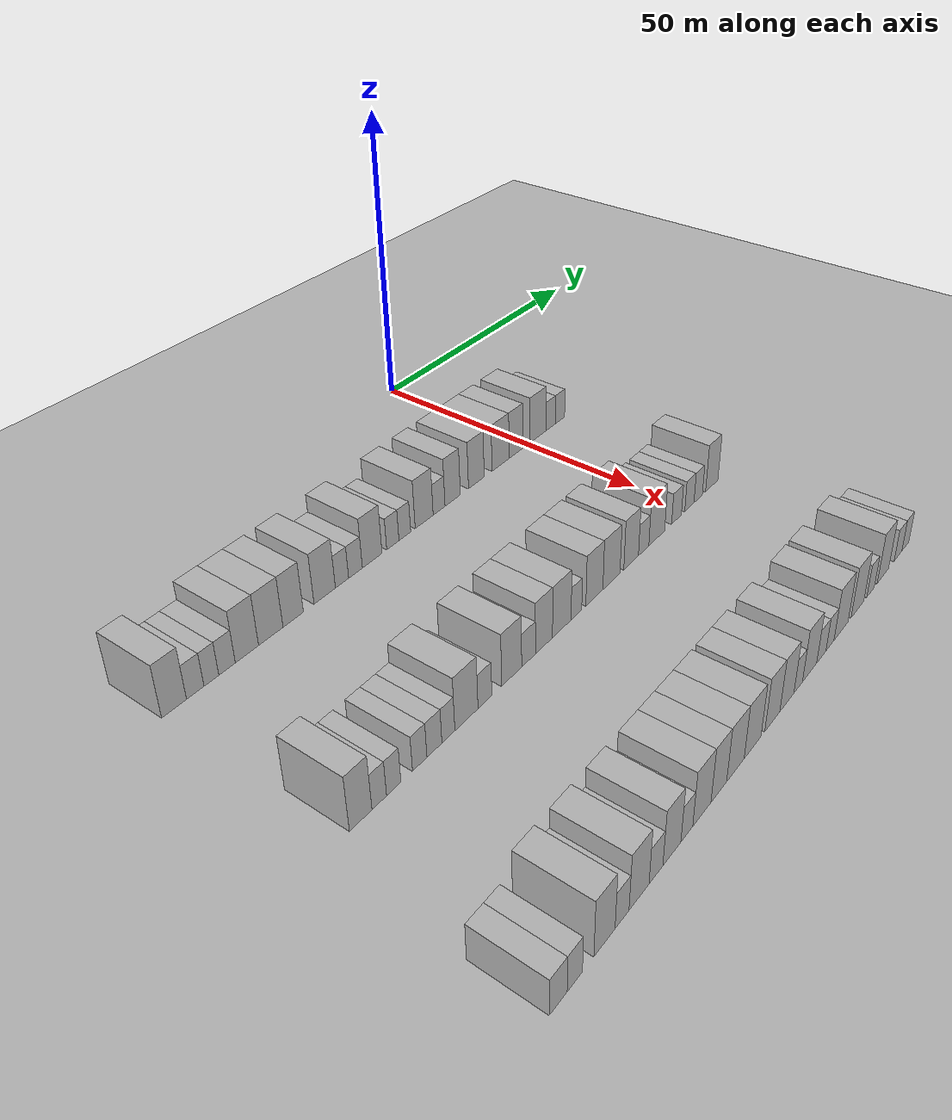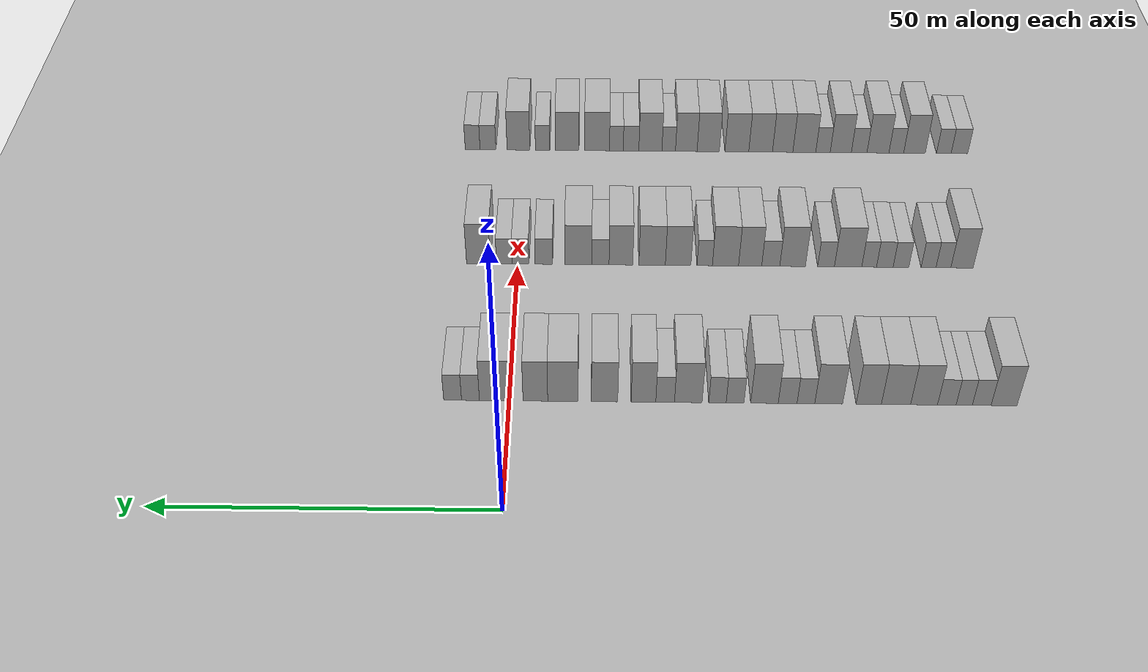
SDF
<sdf version="1.6">
 <world name="default">
  <include><name>ground_plane_1</name><uri>model://HANNAS_ground_plane</uri></include>
  <include>
   <name>ground_plane_2</name>
   <uri>model://HANNAS_ground_plane</uri>
   <pose>100 0 0  0 0 0</pose>
  </include>
  <model name="building_47">
   <static>1</static>
   <pose>25.0000 -73.4508 0 0.000000 0.000000 0.000000</pose>
   <link name="link">
    <pose>0 0 4.50 0 0 0</pose>
    <collision name="collision"><geometry><box><size>10.0000 3.8381 9.0000</size></box></geometry></collision>
    <visual name="visual">
     <cast_shadows>0</cast_shadows>
     <geometry><box><size>10.0000 3.8381 9.0000</size></box></geometry>
     <material>
      <script>
       <uri>model://HANNAS_wall/materials/scripts</uri>
       <uri>model://HANNAS_wall/materials/textures</uri>
       <name>vrc/HANNAS_wall</name>
      </script>
     </material>
    </visual>
   </link>
  </model>
  <model name="building_48">
   <static>1</static>
   <pose>25.0000 -70.1447 0 0.000000 0.000000 0.000000</pose>
   <link name="link">
    <pose>0 0 3.00 0 0 0</pose>
    <collision name="collision"><geometry><box><size>10.0000 2.7741 6.0000</size></box></geometry></collision>
    <visual name="visual">
     <cast_shadows>0</cast_shadows>
     <geometry><box><size>10.0000 2.7741 6.0000</size></box></geometry>
     <material>
      <script>
       <uri>model://HANNAS_wall/materials/scripts</uri>
       <uri>model://HANNAS_wall/materials/textures</uri>
       <name>vrc/HANNAS_wall</name>
      </script>
     </material>
    </visual>
   </link>
  </model>
  <model name="building_49">
   <static>1</static>
   <pose>25.0000 -67.5564 0 0.000000 0.000000 0.000000</pose>
   <link name="link">
    <pose>0 0 3.00 0 0 0</pose>
    <collision name="collision"><geometry><box><size>10.0000 2.4025 6.0000</size></box></geometry></collision>
    <visual name="visual">
     <cast_shadows>0</cast_shadows>
     <geometry><box><size>10.0000 2.4025 6.0000</size></box></geometry>
     <material>
      <script>
       <uri>model://HANNAS_wall/materials/scripts</uri>
       <uri>model://HANNAS_wall/materials/textures</uri>
       <name>vrc/HANNAS_wall</name>
      </script>
     </material>
    </visual>
   </link>
  </model>
  <model name="building_50">
   <static>1</static>
   <pose>25.0000 -64.9782 0 0.000000 0.000000 0.000000</pose>
   <link name="link">
    <pose>0 0 3.00 0 0 0</pose>
    <collision name="collision"><geometry><box><size>10.0000 2.7538 6.0000</size></box></geometry></collision>
    <visual name="visual">
     <cast_shadows>0</cast_shadows>
     <geometry><box><size>10.0000 2.7538 6.0000</size></box></geometry>
     <material>
      <script>
       <uri>model://HANNAS_wall/materials/scripts</uri>
       <uri>model://HANNAS_wall/materials/textures</uri>
       <name>vrc/HANNAS_wall</name>
      </script>
     </material>
    </visual>
   </link>
  </model>
  <model name="building_51">
   <static>1</static>
   <pose>25.0000 -61.6114 0 0.000000 0.000000 0.000000</pose>
   <link name="link">
    <pose>0 0 4.50 0 0 0</pose>
    <collision name="collision"><geometry><box><size>10.0000 3.9800 9.0000</size></box></geometry></collision>
    <visual name="visual">
     <cast_shadows>0</cast_shadows>
     <geometry><box><size>10.0000 3.9800 9.0000</size></box></geometry>
     <material>
      <script>
       <uri>model://HANNAS_wall/materials/scripts</uri>
       <uri>model://HANNAS_wall/materials/textures</uri>
       <name>vrc/HANNAS_wall</name>
      </script>
     </material>
    </visual>
   </link>
  </model>
  <model name="building_52">
   <static>1</static>
   <pose>25.0000 -57.4551 0 0.000000 0.000000 0.000000</pose>
   <link name="link">
    <pose>0 0 4.50 0 0 0</pose>
    <collision name="collision"><geometry><box><size>10.0000 4.3326 9.0000</size></box></geometry></collision>
    <visual name="visual">
     <cast_shadows>0</cast_shadows>
     <geometry><box><size>10.0000 4.3326 9.0000</size></box></geometry>
     <material>
      <script>
       <uri>model://HANNAS_wall/materials/scripts</uri>
       <uri>model://HANNAS_wall/materials/textures</uri>
       <name>vrc/HANNAS_wall</name>
      </script>
     </material>
    </visual>
   </link>
  </model>
  <model name="building_53">
   <static>1</static>
   <pose>25.0000 -53.4151 0 0.000000 0.000000 0.000000</pose>
   <link name="link">
    <pose>0 0 4.50 0 0 0</pose>
    <collision name="collision"><geometry><box><size>10.0000 3.7473 9.0000</size></box></geometry></collision>
    <visual name="visual">
     <cast_shadows>0</cast_shadows>
     <geometry><box><size>10.0000 3.7473 9.0000</size></box></geometry>
     <material>
      <script>
       <uri>model://HANNAS_wall/materials/scripts</uri>
       <uri>model://HANNAS_wall/materials/textures</uri>
       <name>vrc/HANNAS_wall</name>
      </script>
     </material>
    </visual>
   </link>
  </model>
  <model name="building_54">
   <static>1</static>
   <pose>25.0000 -47.4764 0 0.000000 0.000000 0.000000</pose>
   <link name="link">
    <pose>0 0 4.50 0 0 0</pose>
    <collision name="collision"><geometry><box><size>10.0000 4.1301 9.0000</size></box></geometry></collision>
    <visual name="visual">
     <cast_shadows>0</cast_shadows>
     <geometry><box><size>10.0000 4.1301 9.0000</size></box></geometry>
     <material>
      <script>
       <uri>model://HANNAS_wall/materials/scripts</uri>
       <uri>model://HANNAS_wall/materials/textures</uri>
       <name>vrc/HANNAS_wall</name>
      </script>
     </material>
    </visual>
   </link>
  </model>
  <model name="building_55">
   <static>1</static>
   <pose>25.0000 -44.0938 0 0.000000 0.000000 0.000000</pose>
   <link name="link">
    <pose>0 0 3.00 0 0 0</pose>
    <collision name="collision"><geometry><box><size>10.0000 2.6352 6.0000</size></box></geometry></collision>
    <visual name="visual">
     <cast_shadows>0</cast_shadows>
     <geometry><box><size>10.0000 2.6352 6.0000</size></box></geometry>
     <material>
      <script>
       <uri>model://HANNAS_wall/materials/scripts</uri>
       <uri>model://HANNAS_wall/materials/textures</uri>
       <name>vrc/HANNAS_wall</name>
      </script>
     </material>
    </visual>
   </link>
  </model>
  <model name="building_56">
   <static>1</static>
   <pose>25.0000 -41.3825 0 0.000000 0.000000 0.000000</pose>
   <link name="link">
    <pose>0 0 3.00 0 0 0</pose>
    <collision name="collision"><geometry><box><size>10.0000 2.7872 6.0000</size></box></geometry></collision>
    <visual name="visual">
     <cast_shadows>0</cast_shadows>
     <geometry><box><size>10.0000 2.7872 6.0000</size></box></geometry>
     <material>
      <script>
       <uri>model://HANNAS_wall/materials/scripts</uri>
       <uri>model://HANNAS_wall/materials/textures</uri>
       <name>vrc/HANNAS_wall</name>
      </script>
     </material>
    </visual>
   </link>
  </model>
  <model name="building_57">
   <static>1</static>
   <pose>25.0000 -37.9443 0 0.000000 0.000000 0.000000</pose>
   <link name="link">
    <pose>0 0 4.50 0 0 0</pose>
    <collision name="collision"><geometry><box><size>10.0000 4.0893 9.0000</size></box></geometry></collision>
    <visual name="visual">
     <cast_shadows>0</cast_shadows>
     <geometry><box><size>10.0000 4.0893 9.0000</size></box></geometry>
     <material>
      <script>
       <uri>model://HANNAS_wall/materials/scripts</uri>
       <uri>model://HANNAS_wall/materials/textures</uri>
       <name>vrc/HANNAS_wall</name>
      </script>
     </material>
    </visual>
   </link>
  </model>
  <model name="building_58">
   <static>1</static>
   <pose>25.0000 -33.5783 0 0.000000 0.000000 0.000000</pose>
   <link name="link">
    <pose>0 0 3.00 0 0 0</pose>
    <collision name="collision"><geometry><box><size>10.0000 2.6426 6.0000</size></box></geometry></collision>
    <visual name="visual">
     <cast_shadows>0</cast_shadows>
     <geometry><box><size>10.0000 2.6426 6.0000</size></box></geometry>
     <material>
      <script>
       <uri>model://HANNAS_wall/materials/scripts</uri>
       <uri>model://HANNAS_wall/materials/textures</uri>
       <name>vrc/HANNAS_wall</name>
      </script>
     </material>
    </visual>
   </link>
  </model>
  <model name="building_59">
   <static>1</static>
   <pose>25.0000 -30.9635 0 0.000000 0.000000 0.000000</pose>
   <link name="link">
    <pose>0 0 3.00 0 0 0</pose>
    <collision name="collision"><geometry><box><size>10.0000 2.5870 6.0000</size></box></geometry></collision>
    <visual name="visual">
     <cast_shadows>0</cast_shadows>
     <geometry><box><size>10.0000 2.5870 6.0000</size></box></geometry>
     <material>
      <script>
       <uri>model://HANNAS_wall/materials/scripts</uri>
       <uri>model://HANNAS_wall/materials/textures</uri>
       <name>vrc/HANNAS_wall</name>
      </script>
     </material>
    </visual>
   </link>
  </model>
  <model name="building_60">
   <static>1</static>
   <pose>25.0000 -26.6206 0 0.000000 0.000000 0.000000</pose>
   <link name="link">
    <pose>0 0 4.50 0 0 0</pose>
    <collision name="collision"><geometry><box><size>10.0000 4.0988 9.0000</size></box></geometry></collision>
    <visual name="visual">
     <cast_shadows>0</cast_shadows>
     <geometry><box><size>10.0000 4.0988 9.0000</size></box></geometry>
     <material>
      <script>
       <uri>model://HANNAS_wall/materials/scripts</uri>
       <uri>model://HANNAS_wall/materials/textures</uri>
       <name>vrc/HANNAS_wall</name>
      </script>
     </material>
    </visual>
   </link>
  </model>
  <model name="building_61">
   <static>1</static>
   <pose>25.0000 -23.1853 0 0.000000 0.000000 0.000000</pose>
   <link name="link">
    <pose>0 0 3.00 0 0 0</pose>
    <collision name="collision"><geometry><box><size>10.0000 2.7718 6.0000</size></box></geometry></collision>
    <visual name="visual">
     <cast_shadows>0</cast_shadows>
     <geometry><box><size>10.0000 2.7718 6.0000</size></box></geometry>
     <material>
      <script>
       <uri>model://HANNAS_wall/materials/scripts</uri>
       <uri>model://HANNAS_wall/materials/textures</uri>
       <name>vrc/HANNAS_wall</name>
      </script>
     </material>
    </visual>
   </link>
  </model>
  <model name="building_62">
   <static>1</static>
   <pose>25.0000 -19.9638 0 0.000000 0.000000 0.000000</pose>
   <link name="link">
    <pose>0 0 4.50 0 0 0</pose>
    <collision name="collision"><geometry><box><size>10.0000 3.6711 9.0000</size></box></geometry></collision>
    <visual name="visual">
     <cast_shadows>0</cast_shadows>
     <geometry><box><size>10.0000 3.6711 9.0000</size></box></geometry>
     <material>
      <script>
       <uri>model://HANNAS_wall/materials/scripts</uri>
       <uri>model://HANNAS_wall/materials/textures</uri>
       <name>vrc/HANNAS_wall</name>
      </script>
     </material>
    </visual>
   </link>
  </model>
  <model name="building_63">
   <static>1</static>
   <pose>25.0000 -14.1672 0 0.000000 0.000000 0.000000</pose>
   <link name="link">
    <pose>0 0 4.50 0 0 0</pose>
    <collision name="collision"><geometry><box><size>10.0000 3.9221 9.0000</size></box></geometry></collision>
    <visual name="visual">
     <cast_shadows>0</cast_shadows>
     <geometry><box><size>10.0000 3.9221 9.0000</size></box></geometry>
     <material>
      <script>
       <uri>model://HANNAS_wall/materials/scripts</uri>
       <uri>model://HANNAS_wall/materials/textures</uri>
       <name>vrc/HANNAS_wall</name>
      </script>
     </material>
    </visual>
   </link>
  </model>
  <model name="building_64">
   <static>1</static>
   <pose>25.0000 -7.9653 0 0.000000 0.000000 0.000000</pose>
   <link name="link">
    <pose>0 0 4.50 0 0 0</pose>
    <collision name="collision"><geometry><box><size>10.0000 4.4818 9.0000</size></box></geometry></collision>
    <visual name="visual">
     <cast_shadows>0</cast_shadows>
     <geometry><box><size>10.0000 4.4818 9.0000</size></box></geometry>
     <material>
      <script>
       <uri>model://HANNAS_wall/materials/scripts</uri>
       <uri>model://HANNAS_wall/materials/textures</uri>
       <name>vrc/HANNAS_wall</name>
      </script>
     </material>
    </visual>
   </link>
  </model>
  <model name="building_65">
   <static>1</static>
   <pose>25.0000 -3.8849 0 0.000000 0.000000 0.000000</pose>
   <link name="link">
    <pose>0 0 4.50 0 0 0</pose>
    <collision name="collision"><geometry><box><size>10.0000 3.6791 9.0000</size></box></geometry></collision>
    <visual name="visual">
     <cast_shadows>0</cast_shadows>
     <geometry><box><size>10.0000 3.6791 9.0000</size></box></geometry>
     <material>
      <script>
       <uri>model://HANNAS_wall/materials/scripts</uri>
       <uri>model://HANNAS_wall/materials/textures</uri>
       <name>vrc/HANNAS_wall</name>
      </script>
     </material>
    </visual>
   </link>
  </model>
  <model name="building_66">
   <static>1</static>
   <pose>25.0000 2.2016 0 0.000000 0.000000 0.000000</pose>
   <link name="link">
    <pose>0 0 4.50 0 0 0</pose>
    <collision name="collision"><geometry><box><size>10.0000 4.4937 9.0000</size></box></geometry></collision>
    <visual name="visual">
     <cast_shadows>0</cast_shadows>
     <geometry><box><size>10.0000 4.4937 9.0000</size></box></geometry>
     <material>
      <script>
       <uri>model://HANNAS_wall/materials/scripts</uri>
       <uri>model://HANNAS_wall/materials/textures</uri>
       <name>vrc/HANNAS_wall</name>
      </script>
     </material>
    </visual>
   </link>
  </model>
  <model name="building_67">
   <static>1</static>
   <pose>25.0000 5.7803 0 0.000000 0.000000 0.000000</pose>
   <link name="link">
    <pose>0 0 3.00 0 0 0</pose>
    <collision name="collision"><geometry><box><size>10.0000 2.6636 6.0000</size></box></geometry></collision>
    <visual name="visual">
     <cast_shadows>0</cast_shadows>
     <geometry><box><size>10.0000 2.6636 6.0000</size></box></geometry>
     <material>
      <script>
       <uri>model://HANNAS_wall/materials/scripts</uri>
       <uri>model://HANNAS_wall/materials/textures</uri>
       <name>vrc/HANNAS_wall</name>
      </script>
     </material>
    </visual>
   </link>
  </model>
  <model name="building_68">
   <static>1</static>
   <pose>25.0000 8.4387 0 0.000000 0.000000 0.000000</pose>
   <link name="link">
    <pose>0 0 3.00 0 0 0</pose>
    <collision name="collision"><geometry><box><size>10.0000 2.6532 6.0000</size></box></geometry></collision>
    <visual name="visual">
     <cast_shadows>0</cast_shadows>
     <geometry><box><size>10.0000 2.6532 6.0000</size></box></geometry>
     <material>
      <script>
       <uri>model://HANNAS_wall/materials/scripts</uri>
       <uri>model://HANNAS_wall/materials/textures</uri>
       <name>vrc/HANNAS_wall</name>
      </script>
     </material>
    </visual>
   </link>
  </model>
  <model name="building_185">
   <static>1</static>
   <pose>55.0000 -72.6144 0 0.000000 0.000000 0.000000</pose>
   <link name="link">
    <pose>0 0 4.50 0 0 0</pose>
    <collision name="collision"><geometry><box><size>10.0000 3.6320 9.0000</size></box></geometry></collision>
    <visual name="visual">
     <cast_shadows>0</cast_shadows>
     <geometry><box><size>10.0000 3.6320 9.0000</size></box></geometry>
     <material>
      <script>
       <uri>model://HANNAS_wall/materials/scripts</uri>
       <uri>model://HANNAS_wall/materials/textures</uri>
       <name>vrc/HANNAS_wall</name>
      </script>
     </material>
    </visual>
   </link>
  </model>
  <model name="building_186">
   <static>1</static>
   <pose>55.0000 -69.5918 0 0.000000 0.000000 0.000000</pose>
   <link name="link">
    <pose>0 0 3.00 0 0 0</pose>
    <collision name="collision"><geometry><box><size>10.0000 2.4133 6.0000</size></box></geometry></collision>
    <visual name="visual">
     <cast_shadows>0</cast_shadows>
     <geometry><box><size>10.0000 2.4133 6.0000</size></box></geometry>
     <material>
      <script>
       <uri>model://HANNAS_wall/materials/scripts</uri>
       <uri>model://HANNAS_wall/materials/textures</uri>
       <name>vrc/HANNAS_wall</name>
      </script>
     </material>
    </visual>
   </link>
  </model>
  <model name="building_187">
   <static>1</static>
   <pose>55.0000 -67.1681 0 0.000000 0.000000 0.000000</pose>
   <link name="link">
    <pose>0 0 3.00 0 0 0</pose>
    <collision name="collision"><geometry><box><size>10.0000 2.4340 6.0000</size></box></geometry></collision>
    <visual name="visual">
     <cast_shadows>0</cast_shadows>
     <geometry><box><size>10.0000 2.4340 6.0000</size></box></geometry>
     <material>
      <script>
       <uri>model://HANNAS_wall/materials/scripts</uri>
       <uri>model://HANNAS_wall/materials/textures</uri>
       <name>vrc/HANNAS_wall</name>
      </script>
     </material>
    </visual>
   </link>
  </model>
  <model name="building_188">
   <static>1</static>
   <pose>55.0000 -62.6731 0 0.000000 0.000000 0.000000</pose>
   <link name="link">
    <pose>0 0 3.00 0 0 0</pose>
    <collision name="collision"><geometry><box><size>10.0000 2.5561 6.0000</size></box></geometry></collision>
    <visual name="visual">
     <cast_shadows>0</cast_shadows>
     <geometry><box><size>10.0000 2.5561 6.0000</size></box></geometry>
     <material>
      <script>
       <uri>model://HANNAS_wall/materials/scripts</uri>
       <uri>model://HANNAS_wall/materials/textures</uri>
       <name>vrc/HANNAS_wall</name>
      </script>
     </material>
    </visual>
   </link>
  </model>
  <model name="building_189">
   <static>1</static>
   <pose>55.0000 -60.0349 0 0.000000 0.000000 0.000000</pose>
   <link name="link">
    <pose>0 0 3.00 0 0 0</pose>
    <collision name="collision"><geometry><box><size>10.0000 2.7202 6.0000</size></box></geometry></collision>
    <visual name="visual">
     <cast_shadows>0</cast_shadows>
     <geometry><box><size>10.0000 2.7202 6.0000</size></box></geometry>
     <material>
      <script>
       <uri>model://HANNAS_wall/materials/scripts</uri>
       <uri>model://HANNAS_wall/materials/textures</uri>
       <name>vrc/HANNAS_wall</name>
      </script>
     </material>
    </visual>
   </link>
  </model>
  <model name="building_190">
   <static>1</static>
   <pose>55.0000 -57.4698 0 0.000000 0.000000 0.000000</pose>
   <link name="link">
    <pose>0 0 3.00 0 0 0</pose>
    <collision name="collision"><geometry><box><size>10.0000 2.4100 6.0000</size></box></geometry></collision>
    <visual name="visual">
     <cast_shadows>0</cast_shadows>
     <geometry><box><size>10.0000 2.4100 6.0000</size></box></geometry>
     <material>
      <script>
       <uri>model://HANNAS_wall/materials/scripts</uri>
       <uri>model://HANNAS_wall/materials/textures</uri>
       <name>vrc/HANNAS_wall</name>
      </script>
     </material>
    </visual>
   </link>
  </model>
  <model name="building_191">
   <static>1</static>
   <pose>55.0000 -54.0388 0 0.000000 0.000000 0.000000</pose>
   <link name="link">
    <pose>0 0 4.50 0 0 0</pose>
    <collision name="collision"><geometry><box><size>10.0000 4.4521 9.0000</size></box></geometry></collision>
    <visual name="visual">
     <cast_shadows>0</cast_shadows>
     <geometry><box><size>10.0000 4.4521 9.0000</size></box></geometry>
     <material>
      <script>
       <uri>model://HANNAS_wall/materials/scripts</uri>
       <uri>model://HANNAS_wall/materials/textures</uri>
       <name>vrc/HANNAS_wall</name>
      </script>
     </material>
    </visual>
   </link>
  </model>
  <model name="building_192">
   <static>1</static>
   <pose>55.0000 -50.4389 0 0.000000 0.000000 0.000000</pose>
   <link name="link">
    <pose>0 0 3.00 0 0 0</pose>
    <collision name="collision"><geometry><box><size>10.0000 2.7478 6.0000</size></box></geometry></collision>
    <visual name="visual">
     <cast_shadows>0</cast_shadows>
     <geometry><box><size>10.0000 2.7478 6.0000</size></box></geometry>
     <material>
      <script>
       <uri>model://HANNAS_wall/materials/scripts</uri>
       <uri>model://HANNAS_wall/materials/textures</uri>
       <name>vrc/HANNAS_wall</name>
      </script>
     </material>
    </visual>
   </link>
  </model>
  <model name="building_193">
   <static>1</static>
   <pose>55.0000 -44.9739 0 0.000000 0.000000 0.000000</pose>
   <link name="link">
    <pose>0 0 4.50 0 0 0</pose>
    <collision name="collision"><geometry><box><size>10.0000 4.1822 9.0000</size></box></geometry></collision>
    <visual name="visual">
     <cast_shadows>0</cast_shadows>
     <geometry><box><size>10.0000 4.1822 9.0000</size></box></geometry>
     <material>
      <script>
       <uri>model://HANNAS_wall/materials/scripts</uri>
       <uri>model://HANNAS_wall/materials/textures</uri>
       <name>vrc/HANNAS_wall</name>
      </script>
     </material>
    </visual>
   </link>
  </model>
  <model name="building_194">
   <static>1</static>
   <pose>55.0000 -41.4047 0 0.000000 0.000000 0.000000</pose>
   <link name="link">
    <pose>0 0 3.00 0 0 0</pose>
    <collision name="collision"><geometry><box><size>10.0000 2.9561 6.0000</size></box></geometry></collision>
    <visual name="visual">
     <cast_shadows>0</cast_shadows>
     <geometry><box><size>10.0000 2.9561 6.0000</size></box></geometry>
     <material>
      <script>
       <uri>model://HANNAS_wall/materials/scripts</uri>
       <uri>model://HANNAS_wall/materials/textures</uri>
       <name>vrc/HANNAS_wall</name>
      </script>
     </material>
    </visual>
   </link>
  </model>
  <model name="building_195">
   <static>1</static>
   <pose>55.0000 -38.0318 0 0.000000 0.000000 0.000000</pose>
   <link name="link">
    <pose>0 0 4.50 0 0 0</pose>
    <collision name="collision"><geometry><box><size>10.0000 3.7898 9.0000</size></box></geometry></collision>
    <visual name="visual">
     <cast_shadows>0</cast_shadows>
     <geometry><box><size>10.0000 3.7898 9.0000</size></box></geometry>
     <material>
      <script>
       <uri>model://HANNAS_wall/materials/scripts</uri>
       <uri>model://HANNAS_wall/materials/textures</uri>
       <name>vrc/HANNAS_wall</name>
      </script>
     </material>
    </visual>
   </link>
  </model>
  <model name="building_196">
   <static>1</static>
   <pose>55.0000 -33.9993 0 0.000000 0.000000 0.000000</pose>
   <link name="link">
    <pose>0 0 4.50 0 0 0</pose>
    <collision name="collision"><geometry><box><size>10.0000 4.2751 9.0000</size></box></geometry></collision>
    <visual name="visual">
     <cast_shadows>0</cast_shadows>
     <geometry><box><size>10.0000 4.2751 9.0000</size></box></geometry>
     <material>
      <script>
       <uri>model://HANNAS_wall/materials/scripts</uri>
       <uri>model://HANNAS_wall/materials/textures</uri>
       <name>vrc/HANNAS_wall</name>
      </script>
     </material>
    </visual>
   </link>
  </model>
  <model name="building_197">
   <static>1</static>
   <pose>55.0000 -30.6048 0 0.000000 0.000000 0.000000</pose>
   <link name="link">
    <pose>0 0 3.00 0 0 0</pose>
    <collision name="collision"><geometry><box><size>10.0000 2.5138 6.0000</size></box></geometry></collision>
    <visual name="visual">
     <cast_shadows>0</cast_shadows>
     <geometry><box><size>10.0000 2.5138 6.0000</size></box></geometry>
     <material>
      <script>
       <uri>model://HANNAS_wall/materials/scripts</uri>
       <uri>model://HANNAS_wall/materials/textures</uri>
       <name>vrc/HANNAS_wall</name>
      </script>
     </material>
    </visual>
   </link>
  </model>
  <model name="building_198">
   <static>1</static>
   <pose>55.0000 -26.2586 0 0.000000 0.000000 0.000000</pose>
   <link name="link">
    <pose>0 0 4.50 0 0 0</pose>
    <collision name="collision"><geometry><box><size>10.0000 4.1786 9.0000</size></box></geometry></collision>
    <visual name="visual">
     <cast_shadows>0</cast_shadows>
     <geometry><box><size>10.0000 4.1786 9.0000</size></box></geometry>
     <material>
      <script>
       <uri>model://HANNAS_wall/materials/scripts</uri>
       <uri>model://HANNAS_wall/materials/textures</uri>
       <name>vrc/HANNAS_wall</name>
      </script>
     </material>
    </visual>
   </link>
  </model>
  <model name="building_199">
   <static>1</static>
   <pose>55.0000 -21.9993 0 0.000000 0.000000 0.000000</pose>
   <link name="link">
    <pose>0 0 4.50 0 0 0</pose>
    <collision name="collision"><geometry><box><size>10.0000 4.3400 9.0000</size></box></geometry></collision>
    <visual name="visual">
     <cast_shadows>0</cast_shadows>
     <geometry><box><size>10.0000 4.3400 9.0000</size></box></geometry>
     <material>
      <script>
       <uri>model://HANNAS_wall/materials/scripts</uri>
       <uri>model://HANNAS_wall/materials/textures</uri>
       <name>vrc/HANNAS_wall</name>
      </script>
     </material>
    </visual>
   </link>
  </model>
  <model name="building_200">
   <static>1</static>
   <pose>55.0000 -16.8929 0 0.000000 0.000000 0.000000</pose>
   <link name="link">
    <pose>0 0 4.50 0 0 0</pose>
    <collision name="collision"><geometry><box><size>10.0000 3.8729 9.0000</size></box></geometry></collision>
    <visual name="visual">
     <cast_shadows>0</cast_shadows>
     <geometry><box><size>10.0000 3.8729 9.0000</size></box></geometry>
     <material>
      <script>
       <uri>model://HANNAS_wall/materials/scripts</uri>
       <uri>model://HANNAS_wall/materials/textures</uri>
       <name>vrc/HANNAS_wall</name>
      </script>
     </material>
    </visual>
   </link>
  </model>
  <model name="building_201">
   <static>1</static>
   <pose>55.0000 -13.5433 0 0.000000 0.000000 0.000000</pose>
   <link name="link">
    <pose>0 0 3.00 0 0 0</pose>
    <collision name="collision"><geometry><box><size>10.0000 2.8263 6.0000</size></box></geometry></collision>
    <visual name="visual">
     <cast_shadows>0</cast_shadows>
     <geometry><box><size>10.0000 2.8263 6.0000</size></box></geometry>
     <material>
      <script>
       <uri>model://HANNAS_wall/materials/scripts</uri>
       <uri>model://HANNAS_wall/materials/textures</uri>
       <name>vrc/HANNAS_wall</name>
      </script>
     </material>
    </visual>
   </link>
  </model>
  <model name="building_202">
   <static>1</static>
   <pose>55.0000 -9.9177 0 0.000000 0.000000 0.000000</pose>
   <link name="link">
    <pose>0 0 4.50 0 0 0</pose>
    <collision name="collision"><geometry><box><size>10.0000 4.4251 9.0000</size></box></geometry></collision>
    <visual name="visual">
     <cast_shadows>0</cast_shadows>
     <geometry><box><size>10.0000 4.4251 9.0000</size></box></geometry>
     <material>
      <script>
       <uri>model://HANNAS_wall/materials/scripts</uri>
       <uri>model://HANNAS_wall/materials/textures</uri>
       <name>vrc/HANNAS_wall</name>
      </script>
     </material>
    </visual>
   </link>
  </model>
  <model name="building_203">
   <static>1</static>
   <pose>55.0000 -4.2772 0 0.000000 0.000000 0.000000</pose>
   <link name="link">
    <pose>0 0 3.00 0 0 0</pose>
    <collision name="collision"><geometry><box><size>10.0000 2.8559 6.0000</size></box></geometry></collision>
    <visual name="visual">
     <cast_shadows>0</cast_shadows>
     <geometry><box><size>10.0000 2.8559 6.0000</size></box></geometry>
     <material>
      <script>
       <uri>model://HANNAS_wall/materials/scripts</uri>
       <uri>model://HANNAS_wall/materials/textures</uri>
       <name>vrc/HANNAS_wall</name>
      </script>
     </material>
    </visual>
   </link>
  </model>
  <model name="building_204">
   <static>1</static>
   <pose>55.0000 -0.4615 0 0.000000 0.000000 0.000000</pose>
   <link name="link">
    <pose>0 0 3.00 0 0 0</pose>
    <collision name="collision"><geometry><box><size>10.0000 2.7754 6.0000</size></box></geometry></collision>
    <visual name="visual">
     <cast_shadows>0</cast_shadows>
     <geometry><box><size>10.0000 2.7754 6.0000</size></box></geometry>
     <material>
      <script>
       <uri>model://HANNAS_wall/materials/scripts</uri>
       <uri>model://HANNAS_wall/materials/textures</uri>
       <name>vrc/HANNAS_wall</name>
      </script>
     </material>
    </visual>
   </link>
  </model>
  <model name="building_205">
   <static>1</static>
   <pose>55.0000 2.2066 0 0.000000 0.000000 0.000000</pose>
   <link name="link">
    <pose>0 0 3.00 0 0 0</pose>
    <collision name="collision"><geometry><box><size>10.0000 2.5609 6.0000</size></box></geometry></collision>
    <visual name="visual">
     <cast_shadows>0</cast_shadows>
     <geometry><box><size>10.0000 2.5609 6.0000</size></box></geometry>
     <material>
      <script>
       <uri>model://HANNAS_wall/materials/scripts</uri>
       <uri>model://HANNAS_wall/materials/textures</uri>
       <name>vrc/HANNAS_wall</name>
      </script>
     </material>
    </visual>
   </link>
  </model>
  <model name="building_206">
   <static>1</static>
   <pose>55.0000 6.4332 0 0.000000 0.000000 0.000000</pose>
   <link name="link">
    <pose>0 0 4.50 0 0 0</pose>
    <collision name="collision"><geometry><box><size>10.0000 3.8923 9.0000</size></box></geometry></collision>
    <visual name="visual">
     <cast_shadows>0</cast_shadows>
     <geometry><box><size>10.0000 3.8923 9.0000</size></box></geometry>
     <material>
      <script>
       <uri>model://HANNAS_wall/materials/scripts</uri>
       <uri>model://HANNAS_wall/materials/textures</uri>
       <name>vrc/HANNAS_wall</name>
      </script>
     </material>
    </visual>
   </link>
  </model>
  <model name="building_327">
   <static>1</static>
   <pose>85.0000 -77.5467 0 0.000000 0.000000 0.000000</pose>
   <link name="link">
    <pose>0 0 3.00 0 0 0</pose>
    <collision name="collision"><geometry><box><size>10.0000 2.9551 6.0000</size></box></geometry></collision>
    <visual name="visual">
     <cast_shadows>0</cast_shadows>
     <geometry><box><size>10.0000 2.9551 6.0000</size></box></geometry>
     <material>
      <script>
       <uri>model://HANNAS_wall/materials/scripts</uri>
       <uri>model://HANNAS_wall/materials/textures</uri>
       <name>vrc/HANNAS_wall</name>
      </script>
     </material>
    </visual>
   </link>
  </model>
  <model name="building_328">
   <static>1</static>
   <pose>85.0000 -74.7644 0 0.000000 0.000000 0.000000</pose>
   <link name="link">
    <pose>0 0 3.00 0 0 0</pose>
    <collision name="collision"><geometry><box><size>10.0000 2.6093 6.0000</size></box></geometry></collision>
    <visual name="visual">
     <cast_shadows>0</cast_shadows>
     <geometry><box><size>10.0000 2.6093 6.0000</size></box></geometry>
     <material>
      <script>
       <uri>model://HANNAS_wall/materials/scripts</uri>
       <uri>model://HANNAS_wall/materials/textures</uri>
       <name>vrc/HANNAS_wall</name>
      </script>
     </material>
    </visual>
   </link>
  </model>
  <model name="building_329">
   <static>1</static>
   <pose>85.0000 -69.5392 0 0.000000 0.000000 0.000000</pose>
   <link name="link">
    <pose>0 0 4.50 0 0 0</pose>
    <collision name="collision"><geometry><box><size>10.0000 3.8411 9.0000</size></box></geometry></collision>
    <visual name="visual">
     <cast_shadows>0</cast_shadows>
     <geometry><box><size>10.0000 3.8411 9.0000</size></box></geometry>
     <material>
      <script>
       <uri>model://HANNAS_wall/materials/scripts</uri>
       <uri>model://HANNAS_wall/materials/textures</uri>
       <name>vrc/HANNAS_wall</name>
      </script>
     </material>
    </visual>
   </link>
  </model>
  <model name="building_330">
   <static>1</static>
   <pose>85.0000 -66.3072 0 0.000000 0.000000 0.000000</pose>
   <link name="link">
    <pose>0 0 3.00 0 0 0</pose>
    <collision name="collision"><geometry><box><size>10.0000 2.6230 6.0000</size></box></geometry></collision>
    <visual name="visual">
     <cast_shadows>0</cast_shadows>
     <geometry><box><size>10.0000 2.6230 6.0000</size></box></geometry>
     <material>
      <script>
       <uri>model://HANNAS_wall/materials/scripts</uri>
       <uri>model://HANNAS_wall/materials/textures</uri>
       <name>vrc/HANNAS_wall</name>
      </script>
     </material>
    </visual>
   </link>
  </model>
  <model name="building_331">
   <static>1</static>
   <pose>85.0000 -63.0428 0 0.000000 0.000000 0.000000</pose>
   <link name="link">
    <pose>0 0 4.50 0 0 0</pose>
    <collision name="collision"><geometry><box><size>10.0000 3.9058 9.0000</size></box></geometry></collision>
    <visual name="visual">
     <cast_shadows>0</cast_shadows>
     <geometry><box><size>10.0000 3.9058 9.0000</size></box></geometry>
     <material>
      <script>
       <uri>model://HANNAS_wall/materials/scripts</uri>
       <uri>model://HANNAS_wall/materials/textures</uri>
       <name>vrc/HANNAS_wall</name>
      </script>
     </material>
    </visual>
   </link>
  </model>
  <model name="building_332">
   <static>1</static>
   <pose>85.0000 -59.6940 0 0.000000 0.000000 0.000000</pose>
   <link name="link">
    <pose>0 0 3.00 0 0 0</pose>
    <collision name="collision"><geometry><box><size>10.0000 2.7919 6.0000</size></box></geometry></collision>
    <visual name="visual">
     <cast_shadows>0</cast_shadows>
     <geometry><box><size>10.0000 2.7919 6.0000</size></box></geometry>
     <material>
      <script>
       <uri>model://HANNAS_wall/materials/scripts</uri>
       <uri>model://HANNAS_wall/materials/textures</uri>
       <name>vrc/HANNAS_wall</name>
      </script>
     </material>
    </visual>
   </link>
  </model>
  <model name="building_333">
   <static>1</static>
   <pose>85.0000 -56.4161 0 0.000000 0.000000 0.000000</pose>
   <link name="link">
    <pose>0 0 4.50 0 0 0</pose>
    <collision name="collision"><geometry><box><size>10.0000 3.7639 9.0000</size></box></geometry></collision>
    <visual name="visual">
     <cast_shadows>0</cast_shadows>
     <geometry><box><size>10.0000 3.7639 9.0000</size></box></geometry>
     <material>
      <script>
       <uri>model://HANNAS_wall/materials/scripts</uri>
       <uri>model://HANNAS_wall/materials/textures</uri>
       <name>vrc/HANNAS_wall</name>
      </script>
     </material>
    </visual>
   </link>
  </model>
  <model name="building_334">
   <static>1</static>
   <pose>85.0000 -53.2468 0 0.000000 0.000000 0.000000</pose>
   <link name="link">
    <pose>0 0 3.00 0 0 0</pose>
    <collision name="collision"><geometry><box><size>10.0000 2.5746 6.0000</size></box></geometry></collision>
    <visual name="visual">
     <cast_shadows>0</cast_shadows>
     <geometry><box><size>10.0000 2.5746 6.0000</size></box></geometry>
     <material>
      <script>
       <uri>model://HANNAS_wall/materials/scripts</uri>
       <uri>model://HANNAS_wall/materials/textures</uri>
       <name>vrc/HANNAS_wall</name>
      </script>
     </material>
    </visual>
   </link>
  </model>
  <model name="building_335">
   <static>1</static>
   <pose>85.0000 -49.9185 0 0.000000 0.000000 0.000000</pose>
   <link name="link">
    <pose>0 0 4.50 0 0 0</pose>
    <collision name="collision"><geometry><box><size>10.0000 4.0820 9.0000</size></box></geometry></collision>
    <visual name="visual">
     <cast_shadows>0</cast_shadows>
     <geometry><box><size>10.0000 4.0820 9.0000</size></box></geometry>
     <material>
      <script>
       <uri>model://HANNAS_wall/materials/scripts</uri>
       <uri>model://HANNAS_wall/materials/textures</uri>
       <name>vrc/HANNAS_wall</name>
      </script>
     </material>
    </visual>
   </link>
  </model>
  <model name="building_336">
   <static>1</static>
   <pose>85.0000 -46.0579 0 0.000000 0.000000 0.000000</pose>
   <link name="link">
    <pose>0 0 4.50 0 0 0</pose>
    <collision name="collision"><geometry><box><size>10.0000 3.6392 9.0000</size></box></geometry></collision>
    <visual name="visual">
     <cast_shadows>0</cast_shadows>
     <geometry><box><size>10.0000 3.6392 9.0000</size></box></geometry>
     <material>
      <script>
       <uri>model://HANNAS_wall/materials/scripts</uri>
       <uri>model://HANNAS_wall/materials/textures</uri>
       <name>vrc/HANNAS_wall</name>
      </script>
     </material>
    </visual>
   </link>
  </model>
  <model name="building_337">
   <static>1</static>
   <pose>85.0000 -42.1260 0 0.000000 0.000000 0.000000</pose>
   <link name="link">
    <pose>0 0 4.50 0 0 0</pose>
    <collision name="collision"><geometry><box><size>10.0000 4.2246 9.0000</size></box></geometry></collision>
    <visual name="visual">
     <cast_shadows>0</cast_shadows>
     <geometry><box><size>10.0000 4.2246 9.0000</size></box></geometry>
     <material>
      <script>
       <uri>model://HANNAS_wall/materials/scripts</uri>
       <uri>model://HANNAS_wall/materials/textures</uri>
       <name>vrc/HANNAS_wall</name>
      </script>
     </material>
    </visual>
   </link>
  </model>
  <model name="building_338">
   <static>1</static>
   <pose>85.0000 -37.8898 0 0.000000 0.000000 0.000000</pose>
   <link name="link">
    <pose>0 0 4.50 0 0 0</pose>
    <collision name="collision"><geometry><box><size>10.0000 4.2477 9.0000</size></box></geometry></collision>
    <visual name="visual">
     <cast_shadows>0</cast_shadows>
     <geometry><box><size>10.0000 4.2477 9.0000</size></box></geometry>
     <material>
      <script>
       <uri>model://HANNAS_wall/materials/scripts</uri>
       <uri>model://HANNAS_wall/materials/textures</uri>
       <name>vrc/HANNAS_wall</name>
      </script>
     </material>
    </visual>
   </link>
  </model>
  <model name="building_339">
   <static>1</static>
   <pose>85.0000 -32.7807 0 0.000000 0.000000 0.000000</pose>
   <link name="link">
    <pose>0 0 4.50 0 0 0</pose>
    <collision name="collision"><geometry><box><size>10.0000 3.9705 9.0000</size></box></geometry></collision>
    <visual name="visual">
     <cast_shadows>0</cast_shadows>
     <geometry><box><size>10.0000 3.9705 9.0000</size></box></geometry>
     <material>
      <script>
       <uri>model://HANNAS_wall/materials/scripts</uri>
       <uri>model://HANNAS_wall/materials/textures</uri>
       <name>vrc/HANNAS_wall</name>
      </script>
     </material>
    </visual>
   </link>
  </model>
  <model name="building_340">
   <static>1</static>
   <pose>85.0000 -28.8655 0 0.000000 0.000000 0.000000</pose>
   <link name="link">
    <pose>0 0 4.50 0 0 0</pose>
    <collision name="collision"><geometry><box><size>10.0000 3.8599 9.0000</size></box></geometry></collision>
    <visual name="visual">
     <cast_shadows>0</cast_shadows>
     <geometry><box><size>10.0000 3.8599 9.0000</size></box></geometry>
     <material>
      <script>
       <uri>model://HANNAS_wall/materials/scripts</uri>
       <uri>model://HANNAS_wall/materials/textures</uri>
       <name>vrc/HANNAS_wall</name>
      </script>
     </material>
    </visual>
   </link>
  </model>
  <model name="building_341">
   <static>1</static>
   <pose>85.0000 -25.7227 0 0.000000 0.000000 0.000000</pose>
   <link name="link">
    <pose>0 0 3.00 0 0 0</pose>
    <collision name="collision"><geometry><box><size>10.0000 2.4256 6.0000</size></box></geometry></collision>
    <visual name="visual">
     <cast_shadows>0</cast_shadows>
     <geometry><box><size>10.0000 2.4256 6.0000</size></box></geometry>
     <material>
      <script>
       <uri>model://HANNAS_wall/materials/scripts</uri>
       <uri>model://HANNAS_wall/materials/textures</uri>
       <name>vrc/HANNAS_wall</name>
      </script>
     </material>
    </visual>
   </link>
  </model>
  <model name="building_342">
   <static>1</static>
   <pose>85.0000 -22.4487 0 0.000000 0.000000 0.000000</pose>
   <link name="link">
    <pose>0 0 4.50 0 0 0</pose>
    <collision name="collision"><geometry><box><size>10.0000 4.1226 9.0000</size></box></geometry></collision>
    <visual name="visual">
     <cast_shadows>0</cast_shadows>
     <geometry><box><size>10.0000 4.1226 9.0000</size></box></geometry>
     <material>
      <script>
       <uri>model://HANNAS_wall/materials/scripts</uri>
       <uri>model://HANNAS_wall/materials/textures</uri>
       <name>vrc/HANNAS_wall</name>
      </script>
     </material>
    </visual>
   </link>
  </model>
  <model name="building_343">
   <static>1</static>
   <pose>85.0000 -18.9955 0 0.000000 0.000000 0.000000</pose>
   <link name="link">
    <pose>0 0 3.00 0 0 0</pose>
    <collision name="collision"><geometry><box><size>10.0000 2.7837 6.0000</size></box></geometry></collision>
    <visual name="visual">
     <cast_shadows>0</cast_shadows>
     <geometry><box><size>10.0000 2.7837 6.0000</size></box></geometry>
     <material>
      <script>
       <uri>model://HANNAS_wall/materials/scripts</uri>
       <uri>model://HANNAS_wall/materials/textures</uri>
       <name>vrc/HANNAS_wall</name>
      </script>
     </material>
    </visual>
   </link>
  </model>
  <model name="building_344">
   <static>1</static>
   <pose>85.0000 -16.3713 0 0.000000 0.000000 0.000000</pose>
   <link name="link">
    <pose>0 0 3.00 0 0 0</pose>
    <collision name="collision"><geometry><box><size>10.0000 2.4649 6.0000</size></box></geometry></collision>
    <visual name="visual">
     <cast_shadows>0</cast_shadows>
     <geometry><box><size>10.0000 2.4649 6.0000</size></box></geometry>
     <material>
      <script>
       <uri>model://HANNAS_wall/materials/scripts</uri>
       <uri>model://HANNAS_wall/materials/textures</uri>
       <name>vrc/HANNAS_wall</name>
      </script>
     </material>
    </visual>
   </link>
  </model>
  <model name="building_345">
   <static>1</static>
   <pose>85.0000 -12.9224 0 0.000000 0.000000 0.000000</pose>
   <link name="link">
    <pose>0 0 4.50 0 0 0</pose>
    <collision name="collision"><geometry><box><size>10.0000 4.4328 9.0000</size></box></geometry></collision>
    <visual name="visual">
     <cast_shadows>0</cast_shadows>
     <geometry><box><size>10.0000 4.4328 9.0000</size></box></geometry>
     <material>
      <script>
       <uri>model://HANNAS_wall/materials/scripts</uri>
       <uri>model://HANNAS_wall/materials/textures</uri>
       <name>vrc/HANNAS_wall</name>
      </script>
     </material>
    </visual>
   </link>
  </model>
  <model name="building_346">
   <static>1</static>
   <pose>85.0000 -7.5943 0 0.000000 0.000000 0.000000</pose>
   <link name="link">
    <pose>0 0 4.50 0 0 0</pose>
    <collision name="collision"><geometry><box><size>10.0000 4.2235 9.0000</size></box></geometry></collision>
    <visual name="visual">
     <cast_shadows>0</cast_shadows>
     <geometry><box><size>10.0000 4.2235 9.0000</size></box></geometry>
     <material>
      <script>
       <uri>model://HANNAS_wall/materials/scripts</uri>
       <uri>model://HANNAS_wall/materials/textures</uri>
       <name>vrc/HANNAS_wall</name>
      </script>
     </material>
    </visual>
   </link>
  </model>
  <model name="building_347">
   <static>1</static>
   <pose>85.0000 -3.1981 0 0.000000 0.000000 0.000000</pose>
   <link name="link">
    <pose>0 0 3.00 0 0 0</pose>
    <collision name="collision"><geometry><box><size>10.0000 2.5687 6.0000</size></box></geometry></collision>
    <visual name="visual">
     <cast_shadows>0</cast_shadows>
     <geometry><box><size>10.0000 2.5687 6.0000</size></box></geometry>
     <material>
      <script>
       <uri>model://HANNAS_wall/materials/scripts</uri>
       <uri>model://HANNAS_wall/materials/textures</uri>
       <name>vrc/HANNAS_wall</name>
      </script>
     </material>
    </visual>
   </link>
  </model>
  <model name="building_348">
   <static>1</static>
   <pose>85.0000 1.1202 0 0.000000 0.000000 0.000000</pose>
   <link name="link">
    <pose>0 0 4.50 0 0 0</pose>
    <collision name="collision"><geometry><box><size>10.0000 4.0680 9.0000</size></box></geometry></collision>
    <visual name="visual">
     <cast_shadows>0</cast_shadows>
     <geometry><box><size>10.0000 4.0680 9.0000</size></box></geometry>
     <material>
      <script>
       <uri>model://HANNAS_wall/materials/scripts</uri>
       <uri>model://HANNAS_wall/materials/textures</uri>
       <name>vrc/HANNAS_wall</name>
      </script>
     </material>
    </visual>
   </link>
  </model>
  <model name="building_349">
   <static>1</static>
   <pose>85.0000 6.5739 0 0.000000 0.000000 0.000000</pose>
   <link name="link">
    <pose>0 0 3.00 0 0 0</pose>
    <collision name="collision"><geometry><box><size>10.0000 2.8395 6.0000</size></box></geometry></collision>
    <visual name="visual">
     <cast_shadows>0</cast_shadows>
     <geometry><box><size>10.0000 2.8395 6.0000</size></box></geometry>
     <material>
      <script>
       <uri>model://HANNAS_wall/materials/scripts</uri>
       <uri>model://HANNAS_wall/materials/textures</uri>
       <name>vrc/HANNAS_wall</name>
      </script>
     </material>
    </visual>
   </link>
  </model>
  <model name="building_350">
   <static>1</static>
   <pose>85.0000 9.3169 0 0.000000 0.000000 0.000000</pose>
   <link name="link">
    <pose>0 0 3.00 0 0 0</pose>
    <collision name="collision"><geometry><box><size>10.0000 2.6464 6.0000</size></box></geometry></collision>
    <visual name="visual">
     <cast_shadows>0</cast_shadows>
     <geometry><box><size>10.0000 2.6464 6.0000</size></box></geometry>
     <material>
      <script>
       <uri>model://HANNAS_wall/materials/scripts</uri>
       <uri>model://HANNAS_wall/materials/textures</uri>
       <name>vrc/HANNAS_wall</name>
      </script>
     </material>
    </visual>
   </link>
  </model>
 </world>
</sdf>
